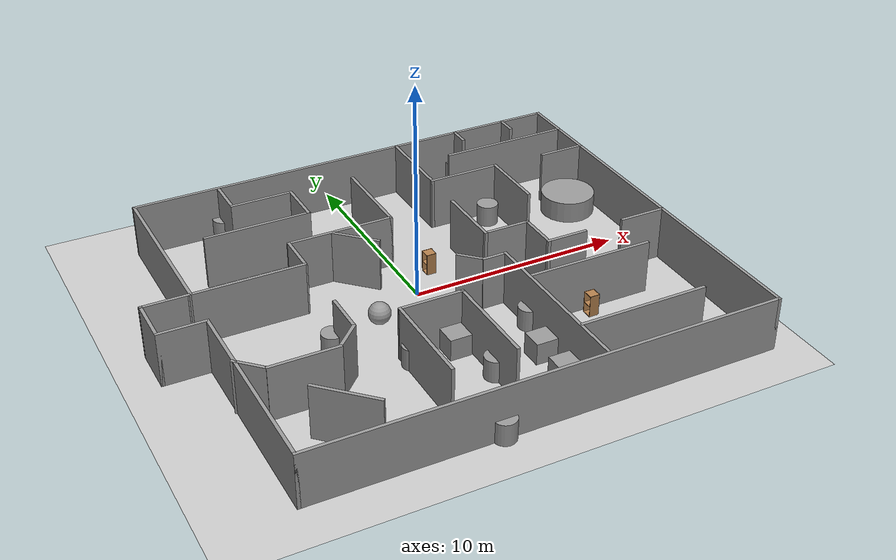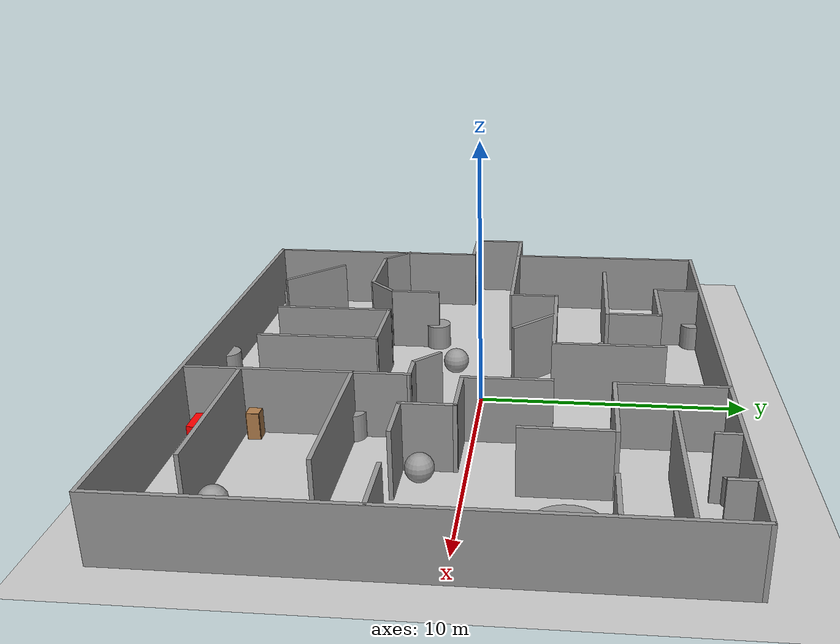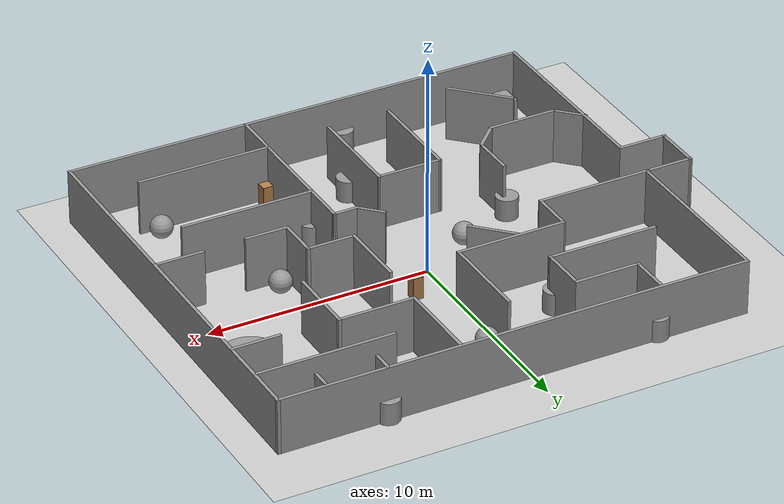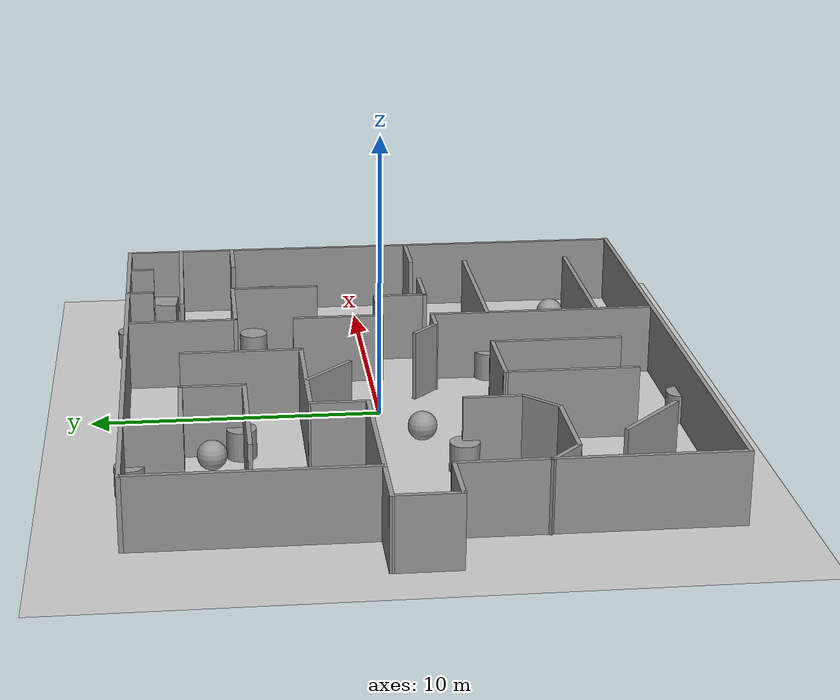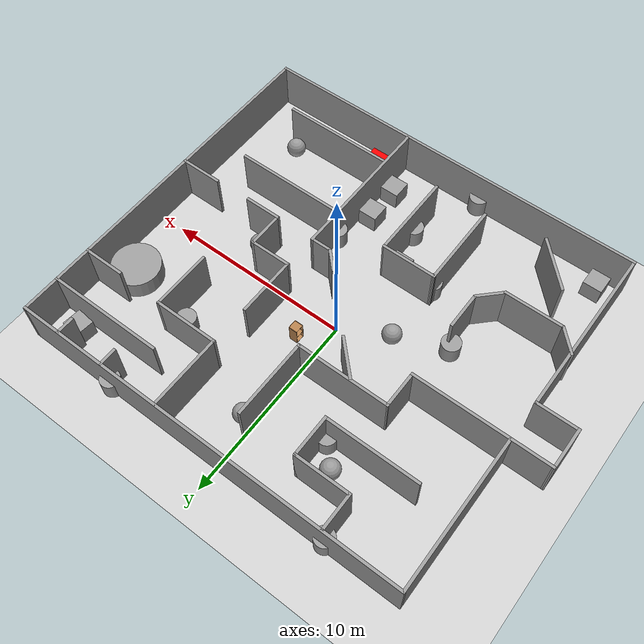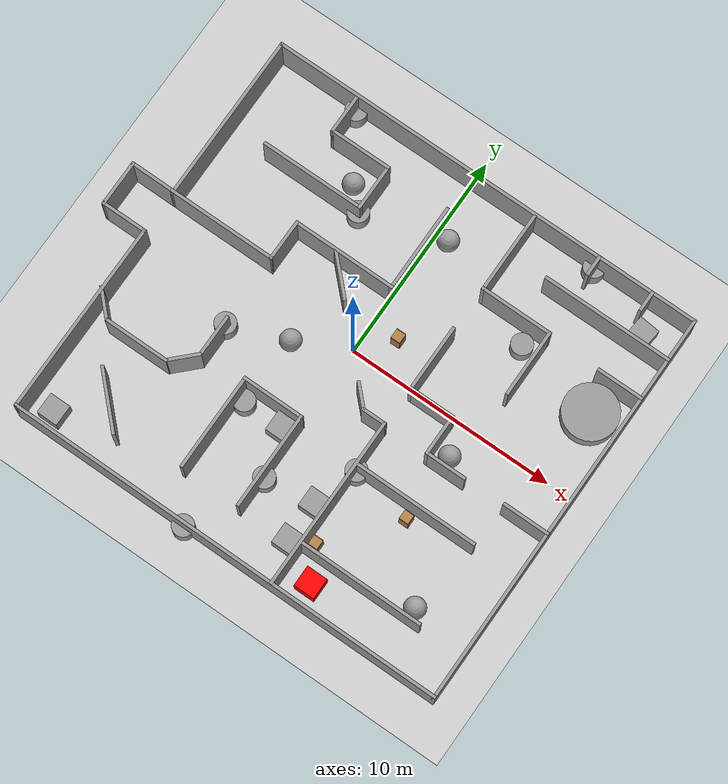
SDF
<sdf version="1.7">
 <world name="default">
  <light name="sun" type="directional">
   <pose>0 0 10 0 -0 0</pose>
   <diffuse>0.8 0.8 0.8 1</diffuse>
   <specular>0.2 0.2 0.2 1</specular>
   <attenuation>
    <range>1000</range>
    <constant>0.9</constant>
    <linear>0.01</linear>
    <quadratic>0.001</quadratic>
   </attenuation>
   <direction>-0.5 0.1 -0.9</direction>
   <spot><inner_angle>0</inner_angle><outer_angle>0</outer_angle><falloff>0</falloff></spot>
  </light>
  <model name="ground_plane">
   <static>1</static>
   <link name="link">
    <collision name="collision">
     <geometry><plane><normal>0 0 1</normal><size>100 100</size></plane></geometry>
     <surface>
      <contact><collide_bitmask>65535</collide_bitmask></contact>
      <friction><ode><mu>100</mu><mu2>50</mu2></ode></friction>
     </surface>
    </collision>
    <visual name="visual">
     <cast_shadows>0</cast_shadows>
     <geometry><plane><normal>0 0 1</normal><size>100 100</size></plane></geometry>
     <material>
      <script><uri>file://media/materials/scripts/gazebo.material</uri><name>Gazebo/Grey</name></script>
     </material>
    </visual>
   </link>
  </model>
  <gravity>0 0 -9.8</gravity>
  <magnetic_field>6e-06 2.3e-05 -4.2e-05</magnetic_field>
  <atmosphere type="adiabatic"/>
  <physics type="ode">
   <max_step_size>0.001</max_step_size>
   <real_time_factor>1</real_time_factor>
   <real_time_update_rate>1000</real_time_update_rate>
  </physics>
  <scene><ambient>0.4 0.4 0.4 1</ambient><background>0.7 0.7 0.7 1</background><shadows>1</shadows></scene>
  <spherical_coordinates>
   <surface_model>EARTH_WGS84</surface_model>
   <latitude_deg>0</latitude_deg>
   <longitude_deg>0</longitude_deg>
   <elevation>0</elevation>
   <heading_deg>0</heading_deg>
  </spherical_coordinates>
  <model name="Maze_2">
   <pose>-0.3438 -0.781152 0 0 -0 0</pose>
   <link name="Wall_1">
    <collision name="Wall_1_Collision">
     <geometry><box><size>2.18537 0.15 2.5</size></box></geometry>
     <pose>0 0 1.25 0 -0 0</pose>
    </collision>
    <visual name="Wall_1_Visual">
     <pose>0 0 1.25 0 -0 0</pose>
     <geometry><box><size>2.18537 0.15 2.5</size></box></geometry>
     <material>
      <script><uri>file://media/materials/scripts/gazebo.material</uri><name>Gazebo/Grey</name></script>
      <ambient>1 1 1 1</ambient>
     </material>
     <meta><layer>0</layer></meta>
    </visual>
    <pose>-10.5822 1.64751 0 0 -0 3.13915</pose>
   </link>
   <link name="Wall_10">
    <collision name="Wall_10_Collision">
     <geometry><box><size>2.25 0.15 2.5</size></box></geometry>
     <pose>1 0 1.25 0 -0 0</pose>
    </collision>
    <visual name="Wall_10_Visual">
     <pose>1 0 1.25 0 -0 0</pose>
     <geometry><box><size>2.25 0.15 2.5</size></box></geometry>
     <material>
      <script><uri>file://media/materials/scripts/gazebo.material</uri><name>Gazebo/Grey</name></script>
      <ambient>1 1 1 1</ambient>
     </material>
     <meta><layer>0</layer></meta>
    </visual>
    <pose>-0.957564 1.99966 0 0 -0 2.35619</pose>
   </link>
   <link name="Wall_12">
    <collision name="Wall_12_Collision">
     <geometry><box><size>5 0.15 2.5</size></box></geometry>
     <pose>0 0 1.25 0 -0 0</pose>
    </collision>
    <visual name="Wall_12_Visual">
     <pose>0 0 1.25 0 -0 0</pose>
     <geometry><box><size>5 0.15 2.5</size></box></geometry>
     <material>
      <script><uri>file://media/materials/scripts/gazebo.material</uri><name>Gazebo/Grey</name></script>
      <ambient>1 1 1 1</ambient>
     </material>
     <meta><layer>0</layer></meta>
    </visual>
    <pose>-2.02915 3.51249 0 0 -0 0</pose>
   </link>
   <link name="Wall_14">
    <collision name="Wall_14_Collision">
     <geometry><box><size>2.01749 0.15 2.5</size></box></geometry>
     <pose>0 0 1.25 0 -0 0</pose>
    </collision>
    <visual name="Wall_14_Visual">
     <pose>0 0 1.25 0 -0 0</pose>
     <geometry><box><size>2.01749 0.15 2.5</size></box></geometry>
     <material>
      <script><uri>file://media/materials/scripts/gazebo.material</uri><name>Gazebo/Grey</name></script>
      <ambient>1 1 1 1</ambient>
     </material>
     <meta><layer>0</layer></meta>
    </visual>
    <pose>-4.45934 2.57876 0 0 -0 -1.57636</pose>
   </link>
   <link name="Wall_18">
    <collision name="Wall_18_Collision">
     <geometry><box><size>5.25 0.15 2.5</size></box></geometry>
     <pose>0 0 1.25 0 -0 0</pose>
    </collision>
    <visual name="Wall_18_Visual">
     <pose>0 0 1.25 0 -0 0</pose>
     <geometry><box><size>5.25 0.15 2.5</size></box></geometry>
     <material>
      <script><uri>file://media/materials/scripts/gazebo.material</uri><name>Gazebo/Grey</name></script>
      <ambient>1 1 1 1</ambient>
     </material>
     <meta><layer>0</layer></meta>
    </visual>
    <pose>-7.01454 1.64503 0 0 -0 3.14159</pose>
   </link>
   <link name="Wall_2">
    <collision name="Wall_2_Collision">
     <geometry><box><size>2.25 0.15 2.5</size></box></geometry>
     <pose>0 0 1.25 0 -0 0</pose>
    </collision>
    <visual name="Wall_2_Visual">
     <pose>0 0 1.25 0 -0 0</pose>
     <geometry><box><size>2.25 0.15 2.5</size></box></geometry>
     <material>
      <script><uri>file://media/materials/scripts/gazebo.material</uri><name>Gazebo/Grey</name></script>
      <ambient>1 1 1 1</ambient>
     </material>
     <meta><layer>0</layer></meta>
    </visual>
    <pose>-11.5999 0.6 0 0 -0 -1.5708</pose>
   </link>
   <link name="Wall_20">
    <collision name="Wall_20_Collision">
     <geometry><box><size>8 0.15 2.5</size></box></geometry>
     <pose>0 0 1.25 0 -0 0</pose>
    </collision>
    <visual name="Wall_20_Visual">
     <pose>0 0 1.25 0 -0 0</pose>
     <geometry><box><size>8 0.15 2.5</size></box></geometry>
     <material>
      <script><uri>file://media/materials/scripts/gazebo.material</uri><name>Gazebo/Grey</name></script>
      <ambient>1 1 1 1</ambient>
     </material>
     <meta><layer>0</layer></meta>
    </visual>
    <pose>-9.49991 5.625 0 0 -0 -1.5708</pose>
   </link>
   <link name="Wall_22">
    <collision name="Wall_22_Collision">
     <geometry><box><size>1.25 0.15 2.5</size></box></geometry>
     <pose>0 0 1.25 0 -0 0</pose>
    </collision>
    <visual name="Wall_22_Visual">
     <pose>0 0 1.25 0 -0 0</pose>
     <geometry><box><size>1.25 0.15 2.5</size></box></geometry>
     <material>
      <script><uri>file://media/materials/scripts/gazebo.material</uri><name>Gazebo/Grey</name></script>
      <ambient>1 1 1 1</ambient>
     </material>
     <meta><layer>0</layer></meta>
    </visual>
    <pose>1.99675 -1.01284 0 0 -0 -0.785398</pose>
   </link>
   <link name="Wall_24">
    <collision name="Wall_24_Collision">
     <geometry><box><size>1.19529 0.15 2.5</size></box></geometry>
     <pose>0 0 1.25 0 -0 0</pose>
    </collision>
    <visual name="Wall_24_Visual">
     <pose>0 0 1.25 0 -0 0</pose>
     <geometry><box><size>1.19529 0.15 2.5</size></box></geometry>
     <material>
      <script><uri>file://media/materials/scripts/gazebo.material</uri><name>Gazebo/Grey</name></script>
      <ambient>1 1 1 1</ambient>
     </material>
     <meta><layer>0</layer></meta>
    </visual>
    <pose>2.94977 -1.43978 0 0 -0 -3.13794</pose>
   </link>
   <link name="Wall_26">
    <collision name="Wall_26_Collision">
     <geometry><box><size>8.25 0.15 2.5</size></box></geometry>
     <pose>0 0 1.25 0 -0 0</pose>
    </collision>
    <visual name="Wall_26_Visual">
     <pose>0 0 1.25 0 -0 0</pose>
     <geometry><box><size>8.25 0.15 2.5</size></box></geometry>
     <material>
      <script><uri>file://media/materials/scripts/gazebo.material</uri><name>Gazebo/Grey</name></script>
      <ambient>1 1 1 1</ambient>
     </material>
     <meta><layer>0</layer></meta>
    </visual>
    <pose>3.47228 -5.48787 0 0 -0 -1.5708</pose>
   </link>
   <link name="Wall_28">
    <collision name="Wall_28_Collision">
     <geometry><box><size>6 0.15 2.5</size></box></geometry>
     <pose>0 0 1.25 0 -0 0</pose>
    </collision>
    <visual name="Wall_28_Visual">
     <pose>0 0 1.25 0 -0 0</pose>
     <geometry><box><size>6 0.15 2.5</size></box></geometry>
     <material>
      <script><uri>file://media/materials/scripts/gazebo.material</uri><name>Gazebo/Grey</name></script>
      <ambient>1 1 1 1</ambient>
     </material>
     <meta><layer>0</layer></meta>
    </visual>
    <pose>6.42548 -3.4608 0 0 -0 0</pose>
   </link>
   <link name="Wall_3">
    <collision name="Wall_3_Collision">
     <geometry><box><size>2.25 0.15 2.5</size></box></geometry>
     <pose>0 0 1.25 0 -0 0</pose>
    </collision>
    <visual name="Wall_3_Visual">
     <pose>0 0 1.25 0 -0 0</pose>
     <geometry><box><size>2.25 0.15 2.5</size></box></geometry>
     <material>
      <script><uri>file://media/materials/scripts/gazebo.material</uri><name>Gazebo/Grey</name></script>
      <ambient>1 1 1 1</ambient>
     </material>
     <meta><layer>0</layer></meta>
    </visual>
    <pose>-10.5499 -0.45 0 0 -0 0</pose>
   </link>
   <link name="Wall_30">
    <collision name="Wall_30_Collision">
     <geometry><box><size>6 0.15 2.5</size></box></geometry>
     <pose>0 0 1.25 0 -0 0</pose>
    </collision>
    <visual name="Wall_30_Visual">
     <pose>0 0 1.25 0 -0 0</pose>
     <geometry><box><size>6 0.15 2.5</size></box></geometry>
     <material>
      <script><uri>file://media/materials/scripts/gazebo.material</uri><name>Gazebo/Grey</name></script>
      <ambient>1 1 1 1</ambient>
     </material>
     <meta><layer>0</layer></meta>
    </visual>
    <pose>6.47548 -7.4508 0 0 -0 0</pose>
   </link>
   <link name="Wall_32">
    <collision name="Wall_32_Collision">
     <geometry><box><size>4.64174 0.15 2.5</size></box></geometry>
     <pose>0 0 1.25 0 -0 0</pose>
    </collision>
    <visual name="Wall_32_Visual">
     <pose>0 0 1.25 0 -0 0</pose>
     <geometry><box><size>4.64174 0.15 2.5</size></box></geometry>
     <material>
      <script><uri>file://media/materials/scripts/gazebo.material</uri><name>Gazebo/Grey</name></script>
      <ambient>1 1 1 1</ambient>
     </material>
     <meta><layer>0</layer></meta>
    </visual>
    <pose>0.48137 -5.42485 0 0 -0 -1.56974</pose>
   </link>
   <link name="Wall_34">
    <collision name="Wall_34_Collision">
     <geometry><box><size>3 0.15 2.5</size></box></geometry>
     <pose>0 0 1.25 0 -0 0</pose>
    </collision>
    <visual name="Wall_34_Visual">
     <pose>0 0 1.25 0 -0 0</pose>
     <geometry><box><size>3 0.15 2.5</size></box></geometry>
     <material>
      <script><uri>file://media/materials/scripts/gazebo.material</uri><name>Gazebo/Grey</name></script>
      <ambient>1 1 1 1</ambient>
     </material>
     <meta><layer>0</layer></meta>
    </visual>
    <pose>-0.946011 -3.17898 0 0 -0 3.14159</pose>
   </link>
   <link name="Wall_36">
    <collision name="Wall_36_Collision">
     <geometry><box><size>4.64174 0.15 2.5</size></box></geometry>
     <pose>0 0 1.25 0 -0 0</pose>
    </collision>
    <visual name="Wall_36_Visual">
     <pose>0 0 1.25 0 -0 0</pose>
     <geometry><box><size>4.64174 0.15 2.5</size></box></geometry>
     <material>
      <script><uri>file://media/materials/scripts/gazebo.material</uri><name>Gazebo/Grey</name></script>
      <ambient>1 1 1 1</ambient>
     </material>
     <meta><layer>0</layer></meta>
    </visual>
    <pose>-2.36863 -5.42485 0 0 -0 -1.56974</pose>
   </link>
   <link name="Wall_38">
    <collision name="Wall_38_Collision">
     <geometry><box><size>4.25 0.15 2.5</size></box></geometry>
     <pose>0 0 1.25 0 -0 0</pose>
    </collision>
    <visual name="Wall_38_Visual">
     <pose>0 0 1.25 0 -0 0</pose>
     <geometry><box><size>4.25 0.15 2.5</size></box></geometry>
     <material>
      <script><uri>file://media/materials/scripts/gazebo.material</uri><name>Gazebo/Grey</name></script>
      <ambient>1 1 1 1</ambient>
     </material>
     <meta><layer>0</layer></meta>
    </visual>
    <pose>0.395855 5.56249 0 0 -0 1.5708</pose>
   </link>
   <link name="Wall_4">
    <collision name="Wall_4_Collision">
     <geometry><box><size>9.25 0.15 2.5</size></box></geometry>
     <pose>0 0 1.25 0 -0 0</pose>
    </collision>
    <visual name="Wall_4_Visual">
     <pose>0 0 1.25 0 -0 0</pose>
     <geometry><box><size>9.25 0.15 2.5</size></box></geometry>
     <material>
      <script><uri>file://media/materials/scripts/gazebo.material</uri><name>Gazebo/Grey</name></script>
      <ambient>1 1 1 1</ambient>
     </material>
     <meta><layer>0</layer></meta>
    </visual>
    <pose>-9.49991 -5 0 0 -0 -1.5708</pose>
   </link>
   <link name="Wall_43">
    <collision name="Wall_43_Collision">
     <geometry><box><size>1.5 0.15 2.5</size></box></geometry>
     <pose>0 0 1.25 0 -0 0</pose>
    </collision>
    <visual name="Wall_43_Visual">
     <pose>0 0 1.25 0 -0 0</pose>
     <geometry><box><size>1.5 0.15 2.5</size></box></geometry>
     <material>
      <script><uri>file://media/materials/scripts/gazebo.material</uri><name>Gazebo/Grey</name></script>
      <ambient>1 1 1 1</ambient>
     </material>
     <meta><layer>0</layer></meta>
    </visual>
    <pose>-4.98733 -3.9113 0 0 -0 0.785398</pose>
   </link>
   <link name="Wall_45">
    <collision name="Wall_45_Collision">
     <geometry><box><size>3.15541 0.15 2.5</size></box></geometry>
     <pose>0 0 1.25 0 -0 0</pose>
    </collision>
    <visual name="Wall_45_Visual">
     <pose>0 0 1.25 0 -0 0</pose>
     <geometry><box><size>3.15541 0.15 2.5</size></box></geometry>
     <material>
      <script><uri>file://media/materials/scripts/gazebo.material</uri><name>Gazebo/Grey</name></script>
      <ambient>1 1 1 1</ambient>
     </material>
     <meta><layer>0</layer></meta>
    </visual>
    <pose>-7.02192 -4.4463 0 0 -0 -3.14006</pose>
   </link>
   <link name="Wall_47">
    <collision name="Wall_47_Collision">
     <geometry><box><size>1.5 0.15 2.5</size></box></geometry>
     <pose>0 0 1.25 0 -0 0</pose>
    </collision>
    <visual name="Wall_47_Visual">
     <pose>0 0 1.25 0 -0 0</pose>
     <geometry><box><size>1.5 0.15 2.5</size></box></geometry>
     <material>
      <script><uri>file://media/materials/scripts/gazebo.material</uri><name>Gazebo/Grey</name></script>
      <ambient>1 1 1 1</ambient>
     </material>
     <meta><layer>0</layer></meta>
    </visual>
    <pose>-9.0687 -3.93452 0 0 -0 -0.785398</pose>
   </link>
   <link name="Wall_49">
    <collision name="Wall_49_Collision">
     <geometry><box><size>2 0.15 2.5</size></box></geometry>
     <pose>0 0 1.25 0 -0 0</pose>
    </collision>
    <visual name="Wall_49_Visual">
     <pose>0 0 1.25 0 -0 0</pose>
     <geometry><box><size>2 0.15 2.5</size></box></geometry>
     <material>
      <script><uri>file://media/materials/scripts/gazebo.material</uri><name>Gazebo/Grey</name></script>
      <ambient>1 1 1 1</ambient>
     </material>
     <meta><layer>0</layer></meta>
    </visual>
    <pose>-4.48721 -2.43429 0 0 -0 -1.5708</pose>
   </link>
   <link name="Wall_5">
    <collision name="Wall_5_Collision">
     <geometry><box><size>21.25 0.15 2.5</size></box></geometry>
     <pose>0 0 1.25 0 -0 0</pose>
    </collision>
    <visual name="Wall_5_Visual">
     <pose>0 0 1.25 0 -0 0</pose>
     <geometry><box><size>21.25 0.15 2.5</size></box></geometry>
     <material>
      <script><uri>file://media/materials/scripts/gazebo.material</uri><name>Gazebo/Grey</name></script>
      <ambient>1 1 1 1</ambient>
     </material>
     <meta><layer>0</layer></meta>
    </visual>
    <pose>1.05009 -9.55 0 0 -0 0</pose>
   </link>
   <link name="Wall_51">
    <collision name="Wall_51_Collision">
     <geometry><box><size>2.25 0.15 2.5</size></box></geometry>
     <pose>0 0 1.25 0 -0 0</pose>
    </collision>
    <visual name="Wall_51_Visual">
     <pose>0 0 1.25 0 -0 0</pose>
     <geometry><box><size>2.25 0.15 2.5</size></box></geometry>
     <material>
      <script><uri>file://media/materials/scripts/gazebo.material</uri><name>Gazebo/Grey</name></script>
      <ambient>1 1 1 1</ambient>
     </material>
     <meta><layer>0</layer></meta>
    </visual>
    <pose>10.5314 -1.37081 0 0 -0 3.14159</pose>
   </link>
   <link name="Wall_53">
    <collision name="Wall_53_Collision">
     <geometry><box><size>2 0.15 2.5</size></box></geometry>
     <pose>0 0 1.25 0 -0 0</pose>
    </collision>
    <visual name="Wall_53_Visual">
     <pose>0 0 1.25 0 -0 0</pose>
     <geometry><box><size>2 0.15 2.5</size></box></geometry>
     <material>
      <script><uri>file://media/materials/scripts/gazebo.material</uri><name>Gazebo/Grey</name></script>
      <ambient>1 1 1 1</ambient>
     </material>
     <meta><layer>0</layer></meta>
    </visual>
    <pose>6.55008 -1.43164 0 0 -0 3.14159</pose>
   </link>
   <link name="Wall_54">
    <collision name="Wall_54_Collision">
     <geometry><box><size>2 0.15 2.5</size></box></geometry>
     <pose>0 0 1.25 0 -0 0</pose>
    </collision>
    <visual name="Wall_54_Visual">
     <pose>0 0 1.25 0 -0 0</pose>
     <geometry><box><size>2 0.15 2.5</size></box></geometry>
     <material>
      <script><uri>file://media/materials/scripts/gazebo.material</uri><name>Gazebo/Grey</name></script>
      <ambient>1 1 1 1</ambient>
     </material>
     <meta><layer>0</layer></meta>
    </visual>
    <pose>5.62508 -0.506641 0 0 -0 1.5708</pose>
   </link>
   <link name="Wall_56">
    <collision name="Wall_56_Collision">
     <geometry><box><size>2.25 0.15 2.5</size></box></geometry>
     <pose>0 0 1.25 0 -0 0</pose>
    </collision>
    <visual name="Wall_56_Visual">
     <pose>0 0 1.25 0 -0 0</pose>
     <geometry><box><size>2.25 0.15 2.5</size></box></geometry>
     <material>
      <script><uri>file://media/materials/scripts/gazebo.material</uri><name>Gazebo/Grey</name></script>
      <ambient>1 1 1 1</ambient>
     </material>
     <meta><layer>0</layer></meta>
    </visual>
    <pose>4.57508 0.418359 0 0 -0 3.14159</pose>
   </link>
   <link name="Wall_58">
    <collision name="Wall_58_Collision">
     <geometry><box><size>3.25 0.15 2.5</size></box></geometry>
     <pose>0 0 1.25 0 -0 0</pose>
    </collision>
    <visual name="Wall_58_Visual">
     <pose>0 0 1.25 0 -0 0</pose>
     <geometry><box><size>3.25 0.15 2.5</size></box></geometry>
     <material>
      <script><uri>file://media/materials/scripts/gazebo.material</uri><name>Gazebo/Grey</name></script>
      <ambient>1 1 1 1</ambient>
     </material>
     <meta><layer>0</layer></meta>
    </visual>
    <pose>3.52508 1.96836 0 0 -0 1.5708</pose>
   </link>
   <link name="Wall_60">
    <collision name="Wall_60_Collision">
     <geometry><box><size>3.25 0.15 2.5</size></box></geometry>
     <pose>0 0 1.25 0 -0 0</pose>
    </collision>
    <visual name="Wall_60_Visual">
     <pose>0 0 1.25 0 -0 0</pose>
     <geometry><box><size>3.25 0.15 2.5</size></box></geometry>
     <material>
      <script><uri>file://media/materials/scripts/gazebo.material</uri><name>Gazebo/Grey</name></script>
      <ambient>1 1 1 1</ambient>
     </material>
     <meta><layer>0</layer></meta>
    </visual>
    <pose>6.92938 4.10641 0 0 -0 1.5708</pose>
   </link>
   <link name="Wall_61">
    <collision name="Wall_61_Collision">
     <geometry><box><size>3.5 0.15 2.5</size></box></geometry>
     <pose>0 0 1.25 0 -0 0</pose>
    </collision>
    <visual name="Wall_61_Visual">
     <pose>0 0 1.25 0 -0 0</pose>
     <geometry><box><size>3.5 0.15 2.5</size></box></geometry>
     <material>
      <script><uri>file://media/materials/scripts/gazebo.material</uri><name>Gazebo/Grey</name></script>
      <ambient>1 1 1 1</ambient>
     </material>
     <meta><layer>0</layer></meta>
    </visual>
    <pose>5.25438 5.65641 0 0 -0 3.14159</pose>
   </link>
   <link name="Wall_62">
    <collision name="Wall_62_Collision">
     <geometry><box><size>4 0.15 2.5</size></box></geometry>
     <pose>0 0 1.25 0 -0 0</pose>
    </collision>
    <visual name="Wall_62_Visual">
     <pose>0 0 1.25 0 -0 0</pose>
     <geometry><box><size>4 0.15 2.5</size></box></geometry>
     <material>
      <script><uri>file://media/materials/scripts/gazebo.material</uri><name>Gazebo/Grey</name></script>
      <ambient>1 1 1 1</ambient>
     </material>
     <meta><layer>0</layer></meta>
    </visual>
    <pose>3.57938 7.58141 0 0 -0 1.5708</pose>
   </link>
   <link name="Wall_64">
    <collision name="Wall_64_Collision">
     <geometry><box><size>2.25 0.15 2.5</size></box></geometry>
     <pose>0 0 1.25 0 -0 0</pose>
    </collision>
    <visual name="Wall_64_Visual">
     <pose>0 0 1.25 0 -0 0</pose>
     <geometry><box><size>2.25 0.15 2.5</size></box></geometry>
     <material>
      <script><uri>file://media/materials/scripts/gazebo.material</uri><name>Gazebo/Grey</name></script>
      <ambient>1 1 1 1</ambient>
     </material>
     <meta><layer>0</layer></meta>
    </visual>
    <pose>10.5479 5.54788 0 0 -0 3.14159</pose>
   </link>
   <link name="Wall_66">
    <collision name="Wall_66_Collision">
     <geometry><box><size>6.25 0.15 2.5</size></box></geometry>
     <pose>0 0 1.25 0 -0 0</pose>
    </collision>
    <visual name="Wall_66_Visual">
     <pose>0 0 1.25 0 -0 0</pose>
     <geometry><box><size>6.25 0.15 2.5</size></box></geometry>
     <material>
      <script><uri>file://media/materials/scripts/gazebo.material</uri><name>Gazebo/Grey</name></script>
      <ambient>1 1 1 1</ambient>
     </material>
     <meta><layer>0</layer></meta>
    </visual>
    <pose>8.54789 7.5544 0 0 -0 3.14159</pose>
   </link>
   <link name="Wall_68">
    <collision name="Wall_68_Collision">
     <geometry><box><size>1 0.15 2.5</size></box></geometry>
     <pose>0 0 1.25 0 -0 0</pose>
    </collision>
    <visual name="Wall_68_Visual">
     <pose>0 0 1.25 0 -0 0</pose>
     <geometry><box><size>1 0.15 2.5</size></box></geometry>
     <material>
      <script><uri>file://media/materials/scripts/gazebo.material</uri><name>Gazebo/Grey</name></script>
      <ambient>1 1 1 1</ambient>
     </material>
     <meta><layer>0</layer></meta>
    </visual>
    <pose>6.80789 9.1094 0 0 -0 -1.5708</pose>
   </link>
   <link name="Wall_7">
    <collision name="Wall_7_Collision">
     <geometry><box><size>19.25 0.15 2.5</size></box></geometry>
     <pose>0 0 1.25 0 -0 0</pose>
    </collision>
    <visual name="Wall_7_Visual">
     <pose>0 0 1.25 0 -0 0</pose>
     <geometry><box><size>19.25 0.15 2.5</size></box></geometry>
     <material>
      <script><uri>file://media/materials/scripts/gazebo.material</uri><name>Gazebo/Grey</name></script>
      <ambient>1 1 1 1</ambient>
     </material>
     <meta><layer>0</layer></meta>
    </visual>
    <pose>11.6001 0 0 0 -0 1.5708</pose>
   </link>
   <link name="Wall_70">
    <collision name="Wall_70_Collision">
     <geometry><box><size>1 0.15 2.5</size></box></geometry>
     <pose>0 0 1.25 0 -0 0</pose>
    </collision>
    <visual name="Wall_70_Visual">
     <pose>0 0 1.25 0 -0 0</pose>
     <geometry><box><size>1 0.15 2.5</size></box></geometry>
     <material>
      <script><uri>file://media/materials/scripts/gazebo.material</uri><name>Gazebo/Grey</name></script>
      <ambient>1 1 1 1</ambient>
     </material>
     <meta><layer>0</layer></meta>
    </visual>
    <pose>9.47789 9.1194 0 0 -0 -1.5708</pose>
   </link>
   <link name="Wall_72">
    <collision name="Wall_72_Collision">
     <geometry><box><size>3 0.15 2.5</size></box></geometry>
     <pose>0 0 1.25 0 -0 0</pose>
    </collision>
    <visual name="Wall_72_Visual">
     <pose>0 0 1.25 0 -0 0</pose>
     <geometry><box><size>3 0.15 2.5</size></box></geometry>
     <material>
      <script><uri>file://media/materials/scripts/gazebo.material</uri><name>Gazebo/Grey</name></script>
      <ambient>1 1 1 1</ambient>
     </material>
     <meta><layer>0</layer></meta>
    </visual>
    <pose>-6.50601 -7.19418 0 0 -0 -0.785398</pose>
   </link>
   <link name="Wall_74">
    <collision name="Wall_74_Collision">
     <geometry><box><size>2 0.15 2.5</size></box></geometry>
     <pose>0 0 1.25 0 -0 0</pose>
    </collision>
    <visual name="Wall_74_Visual">
     <pose>0 0 1.25 0 -0 0</pose>
     <geometry><box><size>2 0.15 2.5</size></box></geometry>
     <material>
      <script><uri>file://media/materials/scripts/gazebo.material</uri><name>Gazebo/Grey</name></script>
      <ambient>1 1 1 1</ambient>
     </material>
     <meta><layer>0</layer></meta>
    </visual>
    <pose>-5.52961 8.60068 0 0 -0 -1.5708</pose>
   </link>
   <link name="Wall_75">
    <collision name="Wall_75_Collision">
     <geometry><box><size>3 0.15 2.5</size></box></geometry>
     <pose>0 0 1.25 0 -0 0</pose>
    </collision>
    <visual name="Wall_75_Visual">
     <pose>0 0 1.25 0 -0 0</pose>
     <geometry><box><size>3 0.15 2.5</size></box></geometry>
     <material>
      <script><uri>file://media/materials/scripts/gazebo.material</uri><name>Gazebo/Grey</name></script>
      <ambient>1 1 1 1</ambient>
     </material>
     <meta><layer>0</layer></meta>
    </visual>
    <pose>-4.10461 7.67568 0 0 -0 0</pose>
   </link>
   <link name="Wall_76">
    <collision name="Wall_76_Collision">
     <geometry><box><size>2.25 0.15 2.5</size></box></geometry>
     <pose>0 0 1.25 0 -0 0</pose>
    </collision>
    <visual name="Wall_76_Visual">
     <pose>0 0 1.25 0 -0 0</pose>
     <geometry><box><size>2.25 0.15 2.5</size></box></geometry>
     <material>
      <script><uri>file://media/materials/scripts/gazebo.material</uri><name>Gazebo/Grey</name></script>
      <ambient>1 1 1 1</ambient>
     </material>
     <meta><layer>0</layer></meta>
    </visual>
    <pose>-2.67961 6.62568 0 0 -0 -1.5708</pose>
   </link>
   <link name="Wall_77">
    <collision name="Wall_77_Collision">
     <geometry><box><size>5 0.15 2.5</size></box></geometry>
     <pose>0 0 1.25 0 -0 0</pose>
    </collision>
    <visual name="Wall_77_Visual">
     <pose>0 0 1.25 0 -0 0</pose>
     <geometry><box><size>5 0.15 2.5</size></box></geometry>
     <material>
      <script><uri>file://media/materials/scripts/gazebo.material</uri><name>Gazebo/Grey</name></script>
      <ambient>1 1 1 1</ambient>
     </material>
     <meta><layer>0</layer></meta>
    </visual>
    <pose>-5.10461 5.57568 0 0 -0 3.14159</pose>
   </link>
   <link name="Wall_8">
    <collision name="Wall_8_Collision">
     <geometry><box><size>21.25 0.15 2.5</size></box></geometry>
     <pose>0 0 1.25 0 -0 0</pose>
    </collision>
    <visual name="Wall_8_Visual">
     <pose>0 0 1.25 0 -0 0</pose>
     <geometry><box><size>21.25 0.15 2.5</size></box></geometry>
     <material>
      <script><uri>file://media/materials/scripts/gazebo.material</uri><name>Gazebo/Grey</name></script>
      <ambient>1 1 1 1</ambient>
     </material>
     <meta><layer>0</layer></meta>
    </visual>
    <pose>1.05009 9.55 0 0 -0 3.14159</pose>
   </link>
   <static>1</static>
  </model>
  <model name="my_model">
   <pose>4.30339 -9.23312 0.5 0 -0 0</pose>
   <static>1</static>
   <link name="link">
    <inertial>
     <mass>1</mass>
     <inertia><ixx>0.083</ixx><ixy>0</ixy><ixz>0</ixz><iyy>0.083</iyy><iyz>0</iyz><izz>0.083</izz></inertia>
    </inertial>
    <collision name="collision">
     <geometry><box><size>1 1 1</size></box></geometry>
     <surface><contact><collide_bitmask>1</collide_bitmask></contact></surface>
    </collision>
    <visual name="visual">
     <geometry><box><size>1 1 1</size></box></geometry>
     <material>
      <ambient>1 0 0 1</ambient>
      <diffuse>1 0 0 1</diffuse>
      <specular>0.1 0.1 0.1 1</specular>
      <emissive>0 0 0 0</emissive>
     </material>
    </visual>
   </link>
  </model>
  <model name="unit_box">
   <pose>2.48421 -8.27897 0.5 0 -0 0</pose>
   <link name="link">
    <inertial>
     <mass>1</mass>
     <inertia>
      <ixx>0.166667</ixx>
      <ixy>0</ixy>
      <ixz>0</ixz>
      <iyy>0.166667</iyy>
      <iyz>0</iyz>
      <izz>0.166667</izz>
     </inertia>
    </inertial>
    <collision name="collision"><geometry><box><size>1 1 1</size></box></geometry></collision>
    <visual name="visual">
     <geometry><box><size>1 1 1</size></box></geometry>
     <material>
      <script><name>Gazebo/Grey</name><uri>file://media/materials/scripts/gazebo.material</uri></script>
     </material>
    </visual>
   </link>
  </model>
  <model name="unit_box_0">
   <pose>2.50055 -6.38021 0.5 0 -0 0</pose>
   <link name="link">
    <inertial>
     <mass>1</mass>
     <inertia>
      <ixx>0.166667</ixx>
      <ixy>0</ixy>
      <ixz>0</ixz>
      <iyy>0.166667</iyy>
      <iyz>0</iyz>
      <izz>0.166667</izz>
     </inertia>
    </inertial>
    <collision name="collision"><geometry><box><size>1 1 1</size></box></geometry></collision>
    <visual name="visual">
     <geometry><box><size>1 1 1</size></box></geometry>
     <material>
      <script><name>Gazebo/Grey</name><uri>file://media/materials/scripts/gazebo.material</uri></script>
     </material>
    </visual>
   </link>
  </model>
  <model name="unit_box_1">
   <pose>-8.74813 -9.43294 0.5 0 -0 0</pose>
   <link name="link">
    <inertial>
     <mass>1</mass>
     <inertia>
      <ixx>0.166667</ixx>
      <ixy>0</ixy>
      <ixz>0</ixz>
      <iyy>0.166667</iyy>
      <iyz>0</iyz>
      <izz>0.166667</izz>
     </inertia>
    </inertial>
    <collision name="collision"><geometry><box><size>1 1 1</size></box></geometry></collision>
    <visual name="visual">
     <geometry><box><size>1 1 1</size></box></geometry>
     <material>
      <script><name>Gazebo/Grey</name><uri>file://media/materials/scripts/gazebo.material</uri></script>
     </material>
    </visual>
   </link>
  </model>
  <model name="unit_cylinder">
   <pose>9.79199 3.39682 0.5 0 -0 3.00853</pose>
   <link name="link">
    <inertial>
     <mass>1</mass>
     <inertia><ixx>0.145833</ixx><ixy>0</ixy><ixz>0</ixz><iyy>0.145833</iyy><iyz>0</iyz><izz>0.125</izz></inertia>
    </inertial>
    <collision name="collision">
     <geometry><cylinder><radius>1.27016</radius><length>1</length></cylinder></geometry>
    </collision>
    <visual name="visual">
     <geometry><cylinder><radius>1.27016</radius><length>1</length></cylinder></geometry>
     <material>
      <script><name>Gazebo/Grey</name><uri>file://media/materials/scripts/gazebo.material</uri></script>
     </material>
    </visual>
   </link>
  </model>
  <model name="cabinet_clone_clone">
   <static>1</static>
   <link name="cabinet_bottom_plate">
    <inertial>
     <pose>0 0 -1 0 -0 0</pose>
     <inertia><ixx>2.05</ixx><ixy>0</ixy><ixz>0</ixz><iyy>2.05</iyy><iyz>0</iyz><izz>2.05</izz></inertia>
     <mass>25</mass>
    </inertial>
    <collision name="cabinet_bottom_plate_geom">
     <pose>0 0 0.01 0 -0 0</pose>
     <geometry><box><size>0.45 0.45 0.02</size></box></geometry>
    </collision>
    <visual name="cabinet_bottom_plate_geom_visual">
     <pose>0 0 0.01 0 -0 0</pose>
     <geometry><box><size>0.45 0.45 0.02</size></box></geometry>
     <material>
      <script><uri>file://media/materials/scripts/gazebo.material</uri><name>Gazebo/Wood</name></script>
     </material>
    </visual>
    <collision name="cabinet_bottom_plate_geom_cabinet_back_plate">
     <pose>0.235 0 0.51 0 -0 0</pose>
     <geometry><box><size>0.02 0.45 1.02</size></box></geometry>
    </collision>
    <visual name="cabinet_bottom_plate_geom_cabinet_back_plate_visual">
     <pose>0.235 0 0.51 0 -0 0</pose>
     <geometry><box><size>0.02 0.45 1.02</size></box></geometry>
     <material>
      <script><uri>file://media/materials/scripts/gazebo.material</uri><name>Gazebo/Wood</name></script>
     </material>
    </visual>
    <collision name="cabinet_bottom_plate_geom_cabinet_left_plate">
     <pose>0 0.235 0.51 0 -0 0</pose>
     <geometry><box><size>0.45 0.02 1.02</size></box></geometry>
    </collision>
    <visual name="cabinet_bottom_plate_geom_cabinet_left_plate_visual">
     <pose>0 0.235 0.51 0 -0 0</pose>
     <geometry><box><size>0.45 0.02 1.02</size></box></geometry>
     <material>
      <script><uri>file://media/materials/scripts/gazebo.material</uri><name>Gazebo/Wood</name></script>
     </material>
    </visual>
    <collision name="cabinet_bottom_plate_geom_cabinet_middle_plate">
     <pose>0 0 0.51 0 -0 0</pose>
     <geometry><box><size>0.45 0.45 0.02</size></box></geometry>
    </collision>
    <visual name="cabinet_bottom_plate_geom_cabinet_middle_plate_visual">
     <pose>0 0 0.51 0 -0 0</pose>
     <geometry><box><size>0.45 0.45 0.02</size></box></geometry>
     <material>
      <script><uri>file://media/materials/scripts/gazebo.material</uri><name>Gazebo/Wood</name></script>
     </material>
    </visual>
    <collision name="cabinet_bottom_plate_geom_cabinet_right_plate">
     <pose>0 -0.235 0.51 0 -0 0</pose>
     <geometry><box><size>0.45 0.02 1.02</size></box></geometry>
    </collision>
    <visual name="cabinet_bottom_plate_geom_cabinet_right_plate_visual">
     <pose>0 -0.235 0.51 0 -0 0</pose>
     <geometry><box><size>0.45 0.02 1.02</size></box></geometry>
     <material>
      <script><uri>file://media/materials/scripts/gazebo.material</uri><name>Gazebo/Wood</name></script>
     </material>
    </visual>
    <collision name="cabinet_bottom_plate_geom_cabinet_top_plate">
     <pose>0 0 1.01 0 -0 0</pose>
     <geometry><box><size>0.45 0.45 0.02</size></box></geometry>
    </collision>
    <visual name="cabinet_bottom_plate_geom_cabinet_top_plate_visual">
     <pose>0 0 1.01 0 -0 0</pose>
     <geometry><box><size>0.45 0.45 0.02</size></box></geometry>
     <material>
      <script><uri>file://media/materials/scripts/gazebo.material</uri><name>Gazebo/Wood</name></script>
     </material>
    </visual>
   </link>
   <pose>1.31526 1.43782 0 0 -0 0</pose>
  </model>
  <model name="unit_cylinder_0">
   <pose>-5.8302 8.55959 0.499996 -4e-06 2e-06 0</pose>
   <link name="link">
    <inertial>
     <mass>1</mass>
     <inertia><ixx>0.145833</ixx><ixy>0</ixy><ixz>0</ixz><iyy>0.145833</iyy><iyz>0</iyz><izz>0.125</izz></inertia>
    </inertial>
    <collision name="collision">
     <geometry><cylinder><radius>0.5</radius><length>1</length></cylinder></geometry>
    </collision>
    <visual name="visual">
     <geometry><cylinder><radius>0.5</radius><length>1</length></cylinder></geometry>
     <material>
      <script><name>Gazebo/Grey</name><uri>file://media/materials/scripts/gazebo.material</uri></script>
     </material>
    </visual>
   </link>
  </model>
  <model name="unit_cylinder_1">
   <pose>-3.18066 4.92111 0.499996 -4e-06 2e-06 0</pose>
   <link name="link">
    <inertial>
     <mass>1</mass>
     <inertia><ixx>0.145833</ixx><ixy>0</ixy><ixz>0</ixz><iyy>0.145833</iyy><iyz>0</iyz><izz>0.125</izz></inertia>
    </inertial>
    <collision name="collision">
     <geometry><cylinder><radius>0.5</radius><length>1</length></cylinder></geometry>
    </collision>
    <visual name="visual">
     <geometry><cylinder><radius>0.5</radius><length>1</length></cylinder></geometry>
     <material>
      <script><name>Gazebo/Grey</name><uri>file://media/materials/scripts/gazebo.material</uri></script>
     </material>
    </visual>
   </link>
  </model>
  <model name="unit_cylinder_2">
   <pose>3.16305 -4.28198 0.499998 3e-06 -2e-06 0</pose>
   <link name="link">
    <inertial>
     <mass>1</mass>
     <inertia><ixx>0.145833</ixx><ixy>0</ixy><ixz>0</ixz><iyy>0.145833</iyy><iyz>0</iyz><izz>0.125</izz></inertia>
    </inertial>
    <collision name="collision">
     <geometry><cylinder><radius>0.5</radius><length>1</length></cylinder></geometry>
    </collision>
    <visual name="visual">
     <geometry><cylinder><radius>0.5</radius><length>1</length></cylinder></geometry>
     <material>
      <script><name>Gazebo/Grey</name><uri>file://media/materials/scripts/gazebo.material</uri></script>
     </material>
    </visual>
   </link>
  </model>
  <model name="cabinet_clone_clone_0">
   <static>1</static>
   <link name="cabinet_bottom_plate">
    <inertial>
     <pose>0 0 -1 0 -0 0</pose>
     <inertia><ixx>2.05</ixx><ixy>0</ixy><ixz>0</ixz><iyy>2.05</iyy><iyz>0</iyz><izz>2.05</izz></inertia>
     <mass>25</mass>
    </inertial>
    <collision name="cabinet_bottom_plate_geom">
     <pose>0 0 0.01 0 -0 0</pose>
     <geometry><box><size>0.45 0.45 0.02</size></box></geometry>
    </collision>
    <visual name="cabinet_bottom_plate_geom_visual">
     <pose>0 0 0.01 0 -0 0</pose>
     <geometry><box><size>0.45 0.45 0.02</size></box></geometry>
     <material>
      <script><uri>file://media/materials/scripts/gazebo.material</uri><name>Gazebo/Wood</name></script>
     </material>
    </visual>
    <collision name="cabinet_bottom_plate_geom_cabinet_back_plate">
     <pose>0.235 0 0.51 0 -0 0</pose>
     <geometry><box><size>0.02 0.45 1.02</size></box></geometry>
    </collision>
    <visual name="cabinet_bottom_plate_geom_cabinet_back_plate_visual">
     <pose>0.235 0 0.51 0 -0 0</pose>
     <geometry><box><size>0.02 0.45 1.02</size></box></geometry>
     <material>
      <script><uri>file://media/materials/scripts/gazebo.material</uri><name>Gazebo/Wood</name></script>
     </material>
    </visual>
    <collision name="cabinet_bottom_plate_geom_cabinet_left_plate">
     <pose>0 0.235 0.51 0 -0 0</pose>
     <geometry><box><size>0.45 0.02 1.02</size></box></geometry>
    </collision>
    <visual name="cabinet_bottom_plate_geom_cabinet_left_plate_visual">
     <pose>0 0.235 0.51 0 -0 0</pose>
     <geometry><box><size>0.45 0.02 1.02</size></box></geometry>
     <material>
      <script><uri>file://media/materials/scripts/gazebo.material</uri><name>Gazebo/Wood</name></script>
     </material>
    </visual>
    <collision name="cabinet_bottom_plate_geom_cabinet_middle_plate">
     <pose>0 0 0.51 0 -0 0</pose>
     <geometry><box><size>0.45 0.45 0.02</size></box></geometry>
    </collision>
    <visual name="cabinet_bottom_plate_geom_cabinet_middle_plate_visual">
     <pose>0 0 0.51 0 -0 0</pose>
     <geometry><box><size>0.45 0.45 0.02</size></box></geometry>
     <material>
      <script><uri>file://media/materials/scripts/gazebo.material</uri><name>Gazebo/Wood</name></script>
     </material>
    </visual>
    <collision name="cabinet_bottom_plate_geom_cabinet_right_plate">
     <pose>0 -0.235 0.51 0 -0 0</pose>
     <geometry><box><size>0.45 0.02 1.02</size></box></geometry>
    </collision>
    <visual name="cabinet_bottom_plate_geom_cabinet_right_plate_visual">
     <pose>0 -0.235 0.51 0 -0 0</pose>
     <geometry><box><size>0.45 0.02 1.02</size></box></geometry>
     <material>
      <script><uri>file://media/materials/scripts/gazebo.material</uri><name>Gazebo/Wood</name></script>
     </material>
    </visual>
    <collision name="cabinet_bottom_plate_geom_cabinet_top_plate">
     <pose>0 0 1.01 0 -0 0</pose>
     <geometry><box><size>0.45 0.45 0.02</size></box></geometry>
    </collision>
    <visual name="cabinet_bottom_plate_geom_cabinet_top_plate_visual">
     <pose>0 0 1.01 0 -0 0</pose>
     <geometry><box><size>0.45 0.45 0.02</size></box></geometry>
     <material>
      <script><uri>file://media/materials/scripts/gazebo.material</uri><name>Gazebo/Wood</name></script>
     </material>
    </visual>
   </link>
   <pose>3.50513 -7.73957 0 0 -0 0</pose>
  </model>
  <model name="cabinet_clone_clone_0_clone">
   <static>1</static>
   <link name="cabinet_bottom_plate">
    <inertial>
     <pose>0 0 -1 0 -0 0</pose>
     <inertia><ixx>2.05</ixx><ixy>0</ixy><ixz>0</ixz><iyy>2.05</iyy><iyz>0</iyz><izz>2.05</izz></inertia>
     <mass>25</mass>
    </inertial>
    <collision name="cabinet_bottom_plate_geom">
     <pose>0 0 0.01 0 -0 0</pose>
     <geometry><box><size>0.45 0.45 0.02</size></box></geometry>
    </collision>
    <visual name="cabinet_bottom_plate_geom_visual">
     <pose>0 0 0.01 0 -0 0</pose>
     <geometry><box><size>0.45 0.45 0.02</size></box></geometry>
     <material>
      <script><uri>file://media/materials/scripts/gazebo.material</uri><name>Gazebo/Wood</name></script>
     </material>
    </visual>
    <collision name="cabinet_bottom_plate_geom_cabinet_back_plate">
     <pose>0.235 0 0.51 0 -0 0</pose>
     <geometry><box><size>0.02 0.45 1.02</size></box></geometry>
    </collision>
    <visual name="cabinet_bottom_plate_geom_cabinet_back_plate_visual">
     <pose>0.235 0 0.51 0 -0 0</pose>
     <geometry><box><size>0.02 0.45 1.02</size></box></geometry>
     <material>
      <script><uri>file://media/materials/scripts/gazebo.material</uri><name>Gazebo/Wood</name></script>
     </material>
    </visual>
    <collision name="cabinet_bottom_plate_geom_cabinet_left_plate">
     <pose>0 0.235 0.51 0 -0 0</pose>
     <geometry><box><size>0.45 0.02 1.02</size></box></geometry>
    </collision>
    <visual name="cabinet_bottom_plate_geom_cabinet_left_plate_visual">
     <pose>0 0.235 0.51 0 -0 0</pose>
     <geometry><box><size>0.45 0.02 1.02</size></box></geometry>
     <material>
      <script><uri>file://media/materials/scripts/gazebo.material</uri><name>Gazebo/Wood</name></script>
     </material>
    </visual>
    <collision name="cabinet_bottom_plate_geom_cabinet_middle_plate">
     <pose>0 0 0.51 0 -0 0</pose>
     <geometry><box><size>0.45 0.45 0.02</size></box></geometry>
    </collision>
    <visual name="cabinet_bottom_plate_geom_cabinet_middle_plate_visual">
     <pose>0 0 0.51 0 -0 0</pose>
     <geometry><box><size>0.45 0.45 0.02</size></box></geometry>
     <material>
      <script><uri>file://media/materials/scripts/gazebo.material</uri><name>Gazebo/Wood</name></script>
     </material>
    </visual>
    <collision name="cabinet_bottom_plate_geom_cabinet_right_plate">
     <pose>0 -0.235 0.51 0 -0 0</pose>
     <geometry><box><size>0.45 0.02 1.02</size></box></geometry>
    </collision>
    <visual name="cabinet_bottom_plate_geom_cabinet_right_plate_visual">
     <pose>0 -0.235 0.51 0 -0 0</pose>
     <geometry><box><size>0.45 0.02 1.02</size></box></geometry>
     <material>
      <script><uri>file://media/materials/scripts/gazebo.material</uri><name>Gazebo/Wood</name></script>
     </material>
    </visual>
    <collision name="cabinet_bottom_plate_geom_cabinet_top_plate">
     <pose>0 0 1.01 0 -0 0</pose>
     <geometry><box><size>0.45 0.45 0.02</size></box></geometry>
    </collision>
    <visual name="cabinet_bottom_plate_geom_cabinet_top_plate_visual">
     <pose>0 0 1.01 0 -0 0</pose>
     <geometry><box><size>0.45 0.45 0.02</size></box></geometry>
     <material>
      <script><uri>file://media/materials/scripts/gazebo.material</uri><name>Gazebo/Wood</name></script>
     </material>
    </visual>
   </link>
   <pose>6.00108 -4.69966 0 0 -0 0</pose>
  </model>
  <model name="unit_cylinder_3">
   <pose>6.41284 8.6754 0.499994 -4e-06 -3e-06 -0</pose>
   <link name="link">
    <inertial>
     <mass>1</mass>
     <inertia><ixx>0.145833</ixx><ixy>0</ixy><ixz>0</ixz><iyy>0.145833</iyy><iyz>0</iyz><izz>0.125</izz></inertia>
    </inertial>
    <collision name="collision">
     <geometry><cylinder><radius>0.5</radius><length>1</length></cylinder></geometry>
    </collision>
    <visual name="visual">
     <geometry><cylinder><radius>0.5</radius><length>1</length></cylinder></geometry>
     <material>
      <script><name>Gazebo/Grey</name><uri>file://media/materials/scripts/gazebo.material</uri></script>
     </material>
    </visual>
   </link>
  </model>
  <model name="unit_box_3">
   <pose>9.67672 7.46839 0.5 -0 -0 -0.101317</pose>
   <link name="link">
    <inertial>
     <mass>1</mass>
     <inertia>
      <ixx>0.166667</ixx>
      <ixy>0</ixy>
      <ixz>0</ixz>
      <iyy>0.166667</iyy>
      <iyz>0</iyz>
      <izz>0.166667</izz>
     </inertia>
    </inertial>
    <collision name="collision"><geometry><box><size>1 1 1</size></box></geometry></collision>
    <visual name="visual">
     <geometry><box><size>1 1 1</size></box></geometry>
     <material>
      <script><name>Gazebo/Grey</name><uri>file://media/materials/scripts/gazebo.material</uri></script>
     </material>
    </visual>
   </link>
  </model>
  <model name="unit_sphere">
   <pose>-4.12896 5.91613 0.5 0 -0 0</pose>
   <link name="link">
    <inertial>
     <mass>1</mass>
     <inertia><ixx>0.1</ixx><ixy>0</ixy><ixz>0</ixz><iyy>0.1</iyy><iyz>0</iyz><izz>0.1</izz></inertia>
    </inertial>
    <collision name="collision"><geometry><sphere><radius>0.5</radius></sphere></geometry></collision>
    <visual name="visual">
     <geometry><sphere><radius>0.5</radius></sphere></geometry>
     <material>
      <script><name>Gazebo/Grey</name><uri>file://media/materials/scripts/gazebo.material</uri></script>
     </material>
    </visual>
   </link>
  </model>
  <model name="unit_sphere_0">
   <pose>0.627129 6.17429 0.5 -0.004348 -0.000283 -0.176285</pose>
   <link name="link">
    <inertial>
     <mass>1</mass>
     <inertia><ixx>0.1</ixx><ixy>0</ixy><ixz>0</ixz><iyy>0.1</iyy><iyz>0</iyz><izz>0.1</izz></inertia>
    </inertial>
    <collision name="collision"><geometry><sphere><radius>0.5</radius></sphere></geometry></collision>
    <visual name="visual">
     <geometry><sphere><radius>0.5</radius></sphere></geometry>
     <material>
      <script><name>Gazebo/Grey</name><uri>file://media/materials/scripts/gazebo.material</uri></script>
     </material>
    </visual>
   </link>
  </model>
  <model name="unit_sphere_1">
   <pose>8.42978 -7.56664 0.5 0 -0 0</pose>
   <link name="link">
    <inertial>
     <mass>1</mass>
     <inertia><ixx>0.1</ixx><ixy>0</ixy><ixz>0</ixz><iyy>0.1</iyy><iyz>0</iyz><izz>0.1</izz></inertia>
    </inertial>
    <collision name="collision"><geometry><sphere><radius>0.5</radius></sphere></geometry></collision>
    <visual name="visual">
     <geometry><sphere><radius>0.5</radius></sphere></geometry>
     <material>
      <script><name>Gazebo/Grey</name><uri>file://media/materials/scripts/gazebo.material</uri></script>
     </material>
    </visual>
   </link>
  </model>
  <model name="unit_cylinder_4">
   <pose>-1.4259 -10.3254 0.499994 -4e-06 -4e-06 -0</pose>
   <link name="link">
    <inertial>
     <mass>1</mass>
     <inertia><ixx>0.145833</ixx><ixy>0</ixy><ixz>0</ixz><iyy>0.145833</iyy><iyz>0</iyz><izz>0.125</izz></inertia>
    </inertial>
    <collision name="collision">
     <geometry><cylinder><radius>0.5</radius><length>1</length></cylinder></geometry>
    </collision>
    <visual name="visual">
     <geometry><cylinder><radius>0.5</radius><length>1</length></cylinder></geometry>
     <material>
      <script><name>Gazebo/Grey</name><uri>file://media/materials/scripts/gazebo.material</uri></script>
     </material>
    </visual>
   </link>
  </model>
  <model name="unit_cylinder_5">
   <pose>-4.99338 -2.27843 0.499994 -4e-06 -2e-06 -0</pose>
   <link name="link">
    <inertial>
     <mass>1</mass>
     <inertia><ixx>0.145833</ixx><ixy>0</ixy><ixz>0</ixz><iyy>0.145833</iyy><iyz>0</iyz><izz>0.125</izz></inertia>
    </inertial>
    <collision name="collision">
     <geometry><cylinder><radius>0.5</radius><length>1</length></cylinder></geometry>
    </collision>
    <visual name="visual">
     <geometry><cylinder><radius>0.5</radius><length>1</length></cylinder></geometry>
     <material>
      <script><name>Gazebo/Grey</name><uri>file://media/materials/scripts/gazebo.material</uri></script>
     </material>
    </visual>
   </link>
  </model>
  <model name="unit_sphere_2">
   <pose>-2.37854 -1.21814 0.5 0 -0 0</pose>
   <link name="link">
    <inertial>
     <mass>1</mass>
     <inertia><ixx>0.1</ixx><ixy>0</ixy><ixz>0</ixz><iyy>0.1</iyy><iyz>0</iyz><izz>0.1</izz></inertia>
    </inertial>
    <collision name="collision"><geometry><sphere><radius>0.5</radius></sphere></geometry></collision>
    <visual name="visual">
     <geometry><sphere><radius>0.5</radius></sphere></geometry>
     <material>
      <script><name>Gazebo/Grey</name><uri>file://media/materials/scripts/gazebo.material</uri></script>
     </material>
    </visual>
   </link>
  </model>
  <model name="unit_sphere_3">
   <pose>5.97619 -1.48456 0.5 0 -0 0</pose>
   <link name="link">
    <inertial>
     <mass>1</mass>
     <inertia><ixx>0.1</ixx><ixy>0</ixy><ixz>0</ixz><iyy>0.1</iyy><iyz>0</iyz><izz>0.1</izz></inertia>
    </inertial>
    <collision name="collision"><geometry><sphere><radius>0.5</radius></sphere></geometry></collision>
    <visual name="visual">
     <geometry><sphere><radius>0.5</radius></sphere></geometry>
     <material>
      <script><name>Gazebo/Grey</name><uri>file://media/materials/scripts/gazebo.material</uri></script>
     </material>
    </visual>
   </link>
  </model>
  <model name="unit_cylinder_6">
   <pose>5.79341 4.15103 0.499992 -3e-06 2e-06 0</pose>
   <link name="link">
    <inertial>
     <mass>1</mass>
     <inertia><ixx>0.145833</ixx><ixy>0</ixy><ixz>0</ixz><iyy>0.145833</iyy><iyz>0</iyz><izz>0.125</izz></inertia>
    </inertial>
    <collision name="collision">
     <geometry><cylinder><radius>0.5</radius><length>1</length></cylinder></geometry>
    </collision>
    <visual name="visual">
     <geometry><cylinder><radius>0.5</radius><length>1</length></cylinder></geometry>
     <material>
      <script><name>Gazebo/Grey</name><uri>file://media/materials/scripts/gazebo.material</uri></script>
     </material>
    </visual>
   </link>
  </model>
  <model name="unit_cylinder_7">
   <pose>-2.41697 -4.53514 0.499994 -4e-06 -2e-06 -0</pose>
   <link name="link">
    <inertial>
     <mass>1</mass>
     <inertia><ixx>0.145833</ixx><ixy>0</ixy><ixz>0</ixz><iyy>0.145833</iyy><iyz>0</iyz><izz>0.125</izz></inertia>
    </inertial>
    <collision name="collision">
     <geometry><cylinder><radius>0.5</radius><length>1</length></cylinder></geometry>
    </collision>
    <visual name="visual">
     <geometry><cylinder><radius>0.5</radius><length>1</length></cylinder></geometry>
     <material>
      <script><name>Gazebo/Grey</name><uri>file://media/materials/scripts/gazebo.material</uri></script>
     </material>
    </visual>
   </link>
  </model>
  <model name="unit_box_2">
   <pose>-0.482213 -4.53916 0.5 -0 -0 -0</pose>
   <link name="link">
    <inertial>
     <mass>1</mass>
     <inertia>
      <ixx>0.166667</ixx>
      <ixy>0</ixy>
      <ixz>0</ixz>
      <iyy>0.166667</iyy>
      <iyz>0</iyz>
      <izz>0.166667</izz>
     </inertia>
    </inertial>
    <collision name="collision"><geometry><box><size>1 1 1</size></box></geometry></collision>
    <visual name="visual">
     <geometry><box><size>1 1 1</size></box></geometry>
     <material>
      <script><name>Gazebo/Grey</name><uri>file://media/materials/scripts/gazebo.material</uri></script>
     </material>
    </visual>
   </link>
  </model>
  <model name="unit_cylinder_8">
   <pose>0.172833 -6.72776 0.499992 -3e-06 3e-06 0</pose>
   <link name="link">
    <inertial>
     <mass>1</mass>
     <inertia><ixx>0.145833</ixx><ixy>0</ixy><ixz>0</ixz><iyy>0.145833</iyy><iyz>0</iyz><izz>0.125</izz></inertia>
    </inertial>
    <collision name="collision">
     <geometry><cylinder><radius>0.5</radius><length>1</length></cylinder></geometry>
    </collision>
    <visual name="visual">
     <geometry><cylinder><radius>0.5</radius><length>1</length></cylinder></geometry>
     <material>
      <script><name>Gazebo/Grey</name><uri>file://media/materials/scripts/gazebo.material</uri></script>
     </material>
    </visual>
   </link>
  </model>
 </world>
</sdf>
